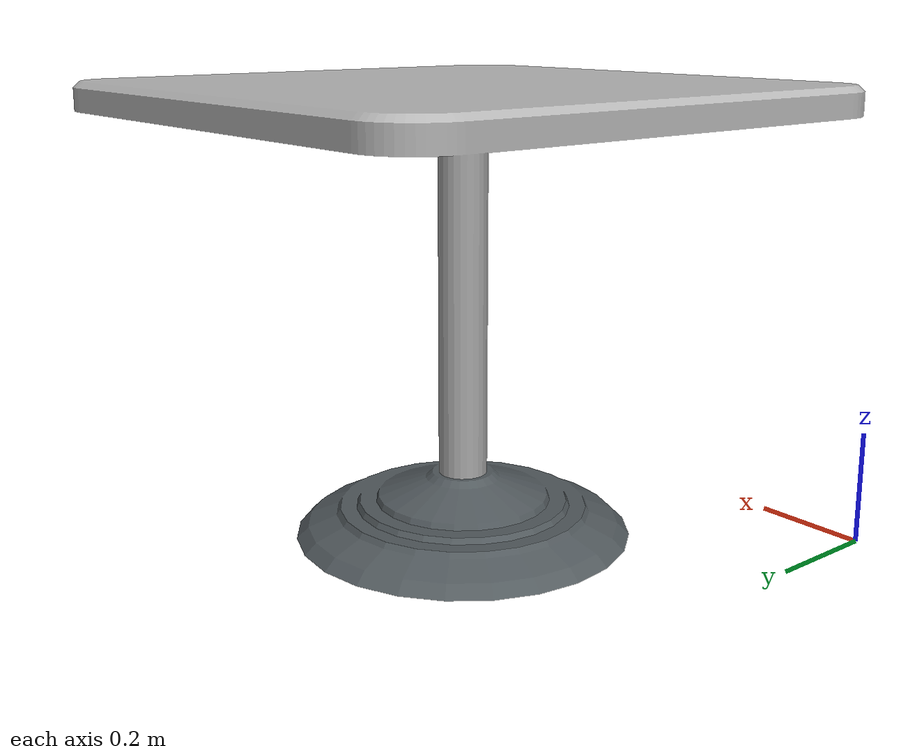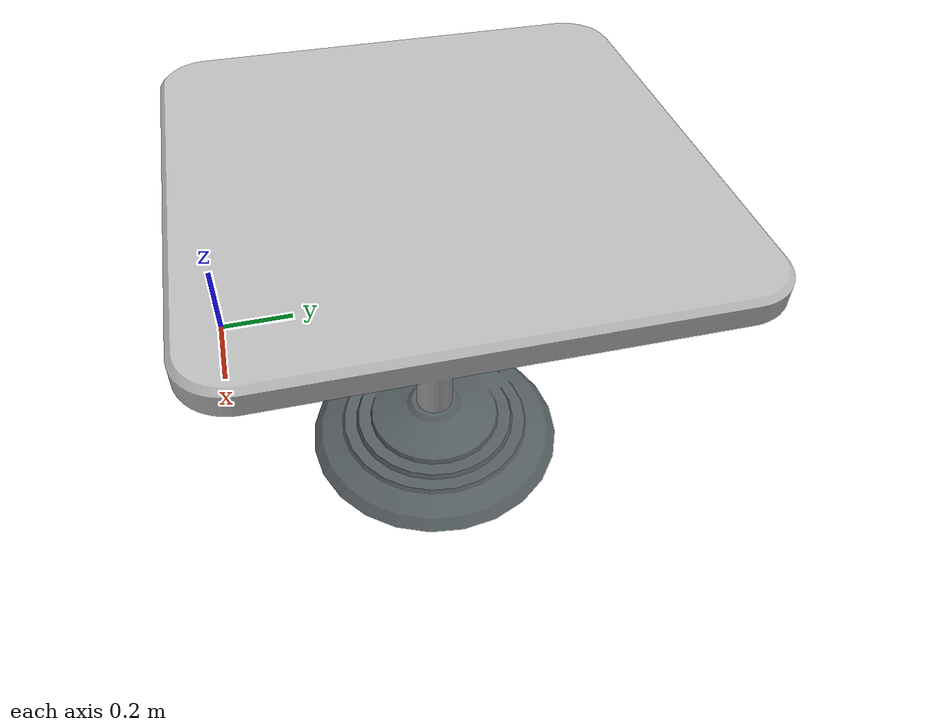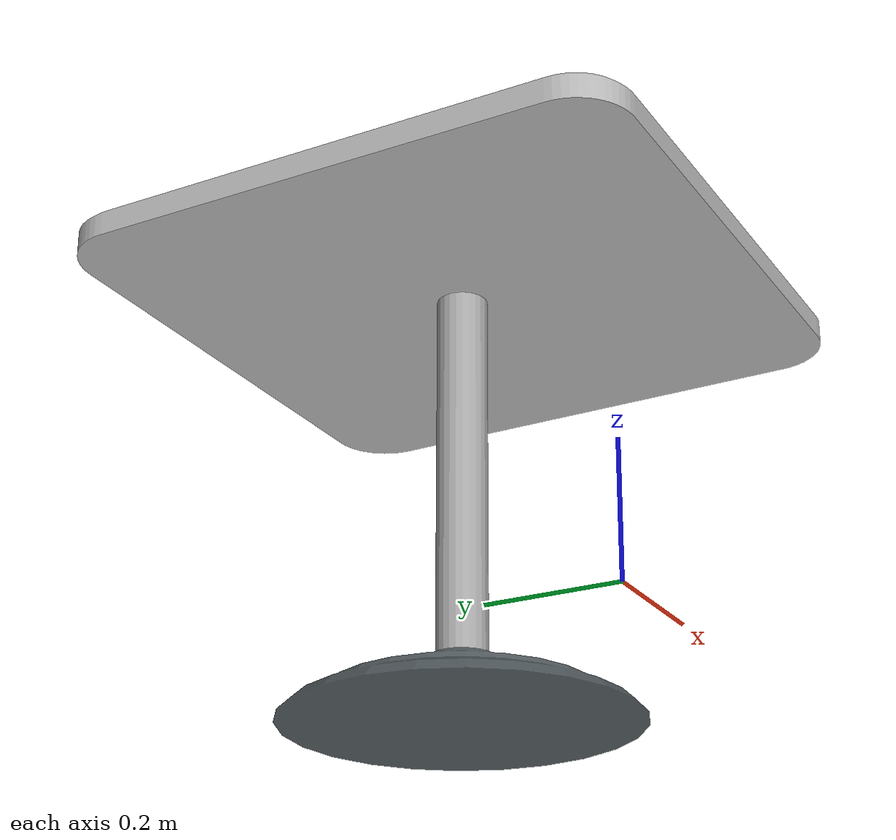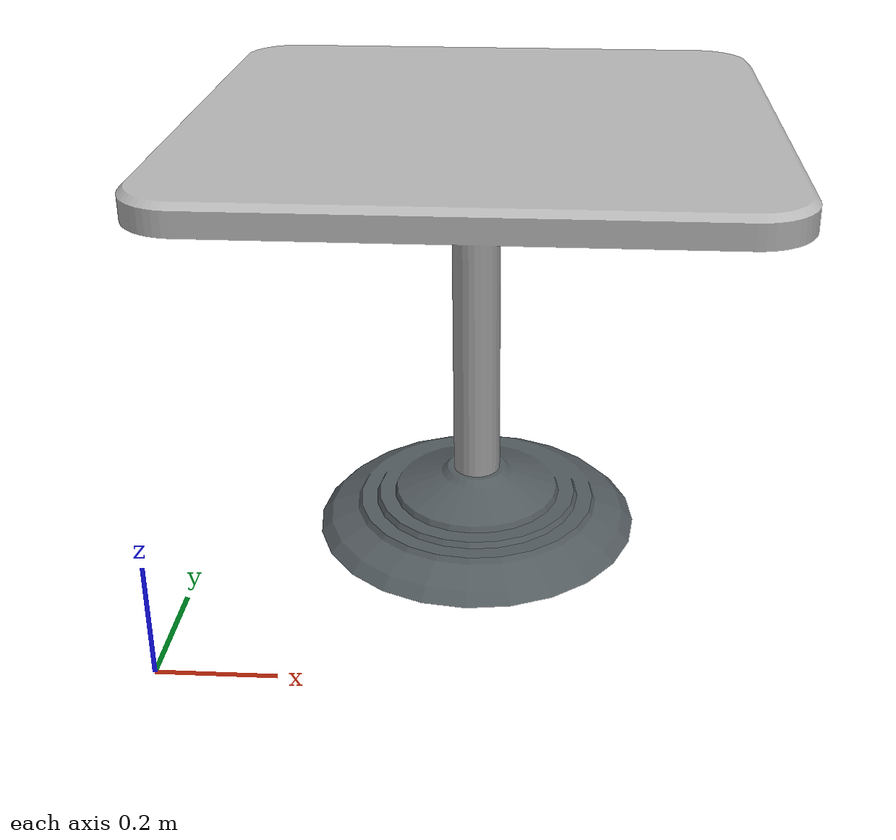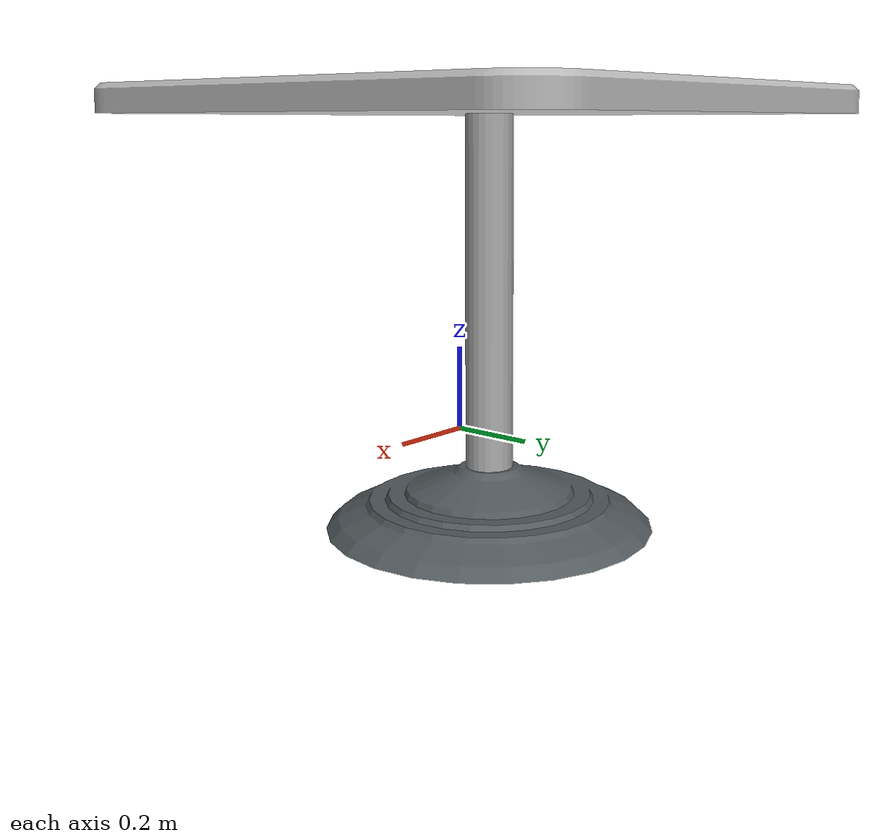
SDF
<?xml version="1.0" ?>
<sdf version="1.5">
  <model name="mj_table">
    <static>true</static>
     <link name="link">
      <visual name="mj_table_visual">
        <geometry>
          <mesh>
            <uri>model://mj_table/meshes/mj_table.dae</uri>
          </mesh>
        </geometry>
      </visual>
      <collision name="mj_table_collision">
        <geometry>
          <mesh>
            <uri>model://mj_table/meshes/mj_table.dae</uri>
          </mesh>
        </geometry>
      </collision>

    </link>
  </model>

</sdf>
